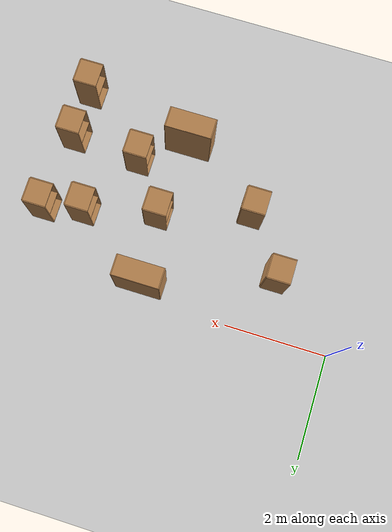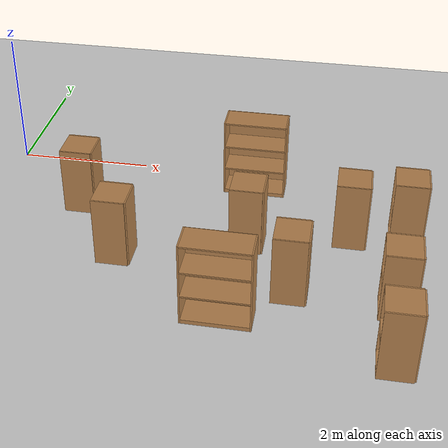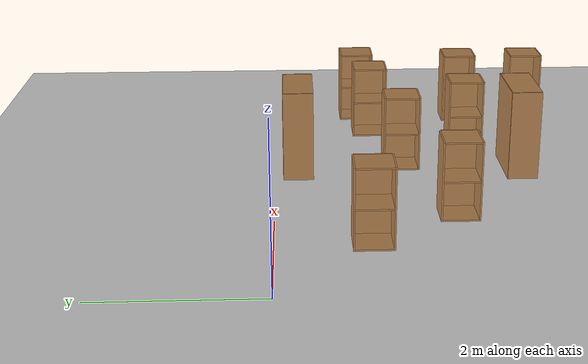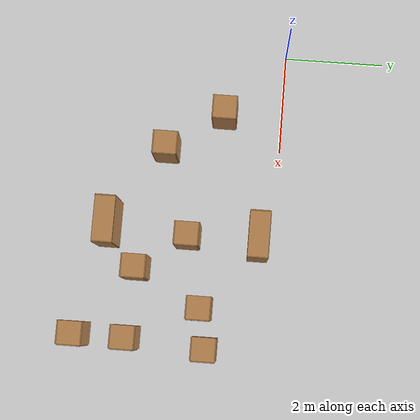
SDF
<sdf version="1.6">
 <world name="default">
  <model name="ground_plane">
   <static>1</static>
   <link name="link">
    <collision name="collision">
     <geometry><plane><normal>0 0 1</normal><size>100 100</size></plane></geometry>
     <surface><friction><ode><mu>100</mu><mu2>50</mu2></ode></friction></surface>
    </collision>
    <visual name="visual">
     <cast_shadows>0</cast_shadows>
     <geometry><plane><normal>0 0 1</normal><size>100 100</size></plane></geometry>
     <material>
      <script><uri>file://media/materials/scripts/gazebo.material</uri><name>Gazebo/Grey</name></script>
     </material>
    </visual>
   </link>
  </model>
  <model name="cabinet_47">
   <static>1</static>
   <link name="cabinet_bottom_plate">
    <inertial>
     <pose>0 0 -1 0 -0 0</pose>
     <inertia><ixx>2.05</ixx><ixy>0</ixy><ixz>0</ixz><iyy>2.05</iyy><iyz>0</iyz><izz>2.05</izz></inertia>
     <mass>25</mass>
    </inertial>
    <collision name="cabinet_bottom_plate_geom">
     <pose>0 0 0.01 0 -0 0</pose>
     <geometry><box><size>0.45 0.45 0.02</size></box></geometry>
    </collision>
    <visual name="cabinet_bottom_plate_geom_visual">
     <pose>0 0 0.01 0 -0 0</pose>
     <geometry><box><size>0.45 0.45 0.02</size></box></geometry>
     <material>
      <script><uri>file://media/materials/scripts/gazebo.material</uri><name>Gazebo/Wood</name></script>
     </material>
    </visual>
    <collision name="cabinet_bottom_plate_geom_cabinet_back_plate">
     <pose>0.235 0 0.51 0 -0 0</pose>
     <geometry><box><size>0.02 0.45 1.02</size></box></geometry>
    </collision>
    <visual name="cabinet_bottom_plate_geom_cabinet_back_plate_visual">
     <pose>0.235 0 0.51 0 -0 0</pose>
     <geometry><box><size>0.02 0.45 1.02</size></box></geometry>
     <material>
      <script><uri>file://media/materials/scripts/gazebo.material</uri><name>Gazebo/Wood</name></script>
     </material>
    </visual>
    <collision name="cabinet_bottom_plate_geom_cabinet_left_plate">
     <pose>0 0.235 0.51 0 -0 0</pose>
     <geometry><box><size>0.45 0.02 1.02</size></box></geometry>
    </collision>
    <visual name="cabinet_bottom_plate_geom_cabinet_left_plate_visual">
     <pose>0 0.235 0.51 0 -0 0</pose>
     <geometry><box><size>0.45 0.02 1.02</size></box></geometry>
     <material>
      <script><uri>file://media/materials/scripts/gazebo.material</uri><name>Gazebo/Wood</name></script>
     </material>
    </visual>
    <collision name="cabinet_bottom_plate_geom_cabinet_middle_plate">
     <pose>0 0 0.51 0 -0 0</pose>
     <geometry><box><size>0.45 0.45 0.02</size></box></geometry>
    </collision>
    <visual name="cabinet_bottom_plate_geom_cabinet_middle_plate_visual">
     <pose>0 0 0.51 0 -0 0</pose>
     <geometry><box><size>0.45 0.45 0.02</size></box></geometry>
     <material>
      <script><uri>file://media/materials/scripts/gazebo.material</uri><name>Gazebo/Wood</name></script>
     </material>
    </visual>
    <collision name="cabinet_bottom_plate_geom_cabinet_right_plate">
     <pose>0 -0.235 0.51 0 -0 0</pose>
     <geometry><box><size>0.45 0.02 1.02</size></box></geometry>
    </collision>
    <visual name="cabinet_bottom_plate_geom_cabinet_right_plate_visual">
     <pose>0 -0.235 0.51 0 -0 0</pose>
     <geometry><box><size>0.45 0.02 1.02</size></box></geometry>
     <material>
      <script><uri>file://media/materials/scripts/gazebo.material</uri><name>Gazebo/Wood</name></script>
     </material>
    </visual>
    <collision name="cabinet_bottom_plate_geom_cabinet_top_plate">
     <pose>0 0 1.01 0 -0 0</pose>
     <geometry><box><size>0.45 0.45 0.02</size></box></geometry>
    </collision>
    <visual name="cabinet_bottom_plate_geom_cabinet_top_plate_visual">
     <pose>0 0 1.01 0 -0 0</pose>
     <geometry><box><size>0.45 0.45 0.02</size></box></geometry>
     <material>
      <script><uri>file://media/materials/scripts/gazebo.material</uri><name>Gazebo/Wood</name></script>
     </material>
    </visual>
   </link>
   <pose>1.33405 -1.15531 0 0 -0 0</pose>
  </model>
  <model name="cabinet_48">
   <static>1</static>
   <link name="cabinet_bottom_plate">
    <inertial>
     <pose>0 0 -1 0 -0 0</pose>
     <inertia><ixx>2.05</ixx><ixy>0</ixy><ixz>0</ixz><iyy>2.05</iyy><iyz>0</iyz><izz>2.05</izz></inertia>
     <mass>25</mass>
    </inertial>
    <collision name="cabinet_bottom_plate_geom">
     <pose>0 0 0.01 0 -0 0</pose>
     <geometry><box><size>0.45 0.45 0.02</size></box></geometry>
    </collision>
    <visual name="cabinet_bottom_plate_geom_visual">
     <pose>0 0 0.01 0 -0 0</pose>
     <geometry><box><size>0.45 0.45 0.02</size></box></geometry>
     <material>
      <script><uri>file://media/materials/scripts/gazebo.material</uri><name>Gazebo/Wood</name></script>
     </material>
    </visual>
    <collision name="cabinet_bottom_plate_geom_cabinet_back_plate">
     <pose>0.235 0 0.51 0 -0 0</pose>
     <geometry><box><size>0.02 0.45 1.02</size></box></geometry>
    </collision>
    <visual name="cabinet_bottom_plate_geom_cabinet_back_plate_visual">
     <pose>0.235 0 0.51 0 -0 0</pose>
     <geometry><box><size>0.02 0.45 1.02</size></box></geometry>
     <material>
      <script><uri>file://media/materials/scripts/gazebo.material</uri><name>Gazebo/Wood</name></script>
     </material>
    </visual>
    <collision name="cabinet_bottom_plate_geom_cabinet_left_plate">
     <pose>0 0.235 0.51 0 -0 0</pose>
     <geometry><box><size>0.45 0.02 1.02</size></box></geometry>
    </collision>
    <visual name="cabinet_bottom_plate_geom_cabinet_left_plate_visual">
     <pose>0 0.235 0.51 0 -0 0</pose>
     <geometry><box><size>0.45 0.02 1.02</size></box></geometry>
     <material>
      <script><uri>file://media/materials/scripts/gazebo.material</uri><name>Gazebo/Wood</name></script>
     </material>
    </visual>
    <collision name="cabinet_bottom_plate_geom_cabinet_middle_plate">
     <pose>0 0 0.51 0 -0 0</pose>
     <geometry><box><size>0.45 0.45 0.02</size></box></geometry>
    </collision>
    <visual name="cabinet_bottom_plate_geom_cabinet_middle_plate_visual">
     <pose>0 0 0.51 0 -0 0</pose>
     <geometry><box><size>0.45 0.45 0.02</size></box></geometry>
     <material>
      <script><uri>file://media/materials/scripts/gazebo.material</uri><name>Gazebo/Wood</name></script>
     </material>
    </visual>
    <collision name="cabinet_bottom_plate_geom_cabinet_right_plate">
     <pose>0 -0.235 0.51 0 -0 0</pose>
     <geometry><box><size>0.45 0.02 1.02</size></box></geometry>
    </collision>
    <visual name="cabinet_bottom_plate_geom_cabinet_right_plate_visual">
     <pose>0 -0.235 0.51 0 -0 0</pose>
     <geometry><box><size>0.45 0.02 1.02</size></box></geometry>
     <material>
      <script><uri>file://media/materials/scripts/gazebo.material</uri><name>Gazebo/Wood</name></script>
     </material>
    </visual>
    <collision name="cabinet_bottom_plate_geom_cabinet_top_plate">
     <pose>0 0 1.01 0 -0 0</pose>
     <geometry><box><size>0.45 0.45 0.02</size></box></geometry>
    </collision>
    <visual name="cabinet_bottom_plate_geom_cabinet_top_plate_visual">
     <pose>0 0 1.01 0 -0 0</pose>
     <geometry><box><size>0.45 0.45 0.02</size></box></geometry>
     <material>
      <script><uri>file://media/materials/scripts/gazebo.material</uri><name>Gazebo/Wood</name></script>
     </material>
    </visual>
   </link>
   <pose>2.12091 -2.26683 0 0 -0 0</pose>
  </model>
  <model name="bookshelf_36">
   <static>1</static>
   <link name="link">
    <inertial><mass>1</mass></inertial>
    <collision name="back">
     <pose>0 0.005 0.6 0 -0 0</pose>
     <geometry><box><size>0.9 0.01 1.2</size></box></geometry>
    </collision>
    <visual name="visual1">
     <pose>0 0.005 0.6 0 -0 0</pose>
     <geometry><box><size>0.9 0.01 1.2</size></box></geometry>
     <material>
      <script><uri>file://media/materials/scripts/gazebo.material</uri><name>Gazebo/Wood</name></script>
     </material>
    </visual>
    <collision name="left_side">
     <pose>0.45 -0.195 0.6 0 -0 0</pose>
     <geometry><box><size>0.02 0.4 1.2</size></box></geometry>
    </collision>
    <visual name="visual2">
     <pose>0.45 -0.195 0.6 0 -0 0</pose>
     <geometry><box><size>0.02 0.4 1.2</size></box></geometry>
     <material>
      <script><uri>file://media/materials/scripts/gazebo.material</uri><name>Gazebo/Wood</name></script>
     </material>
    </visual>
    <collision name="right_side">
     <pose>-0.45 -0.195 0.6 0 -0 0</pose>
     <geometry><box><size>0.02 0.4 1.2</size></box></geometry>
    </collision>
    <visual name="visual3">
     <pose>-0.45 -0.195 0.6 0 -0 0</pose>
     <geometry><box><size>0.02 0.4 1.2</size></box></geometry>
     <material>
      <script><uri>file://media/materials/scripts/gazebo.material</uri><name>Gazebo/Wood</name></script>
     </material>
    </visual>
    <collision name="bottom">
     <pose>0 -0.195 0.03 0 -0 0</pose>
     <geometry><box><size>0.88 0.4 0.06</size></box></geometry>
    </collision>
    <visual name="visual4">
     <pose>0 -0.195 0.03 0 -0 0</pose>
     <geometry><box><size>0.88 0.4 0.06</size></box></geometry>
     <material>
      <script><uri>file://media/materials/scripts/gazebo.material</uri><name>Gazebo/Wood</name></script>
     </material>
    </visual>
    <collision name="top">
     <pose>0 -0.195 1.19 0 -0 0</pose>
     <geometry><box><size>0.88 0.4 0.02</size></box></geometry>
    </collision>
    <visual name="visual5">
     <pose>0 -0.195 1.19 0 -0 0</pose>
     <geometry><box><size>0.88 0.4 0.02</size></box></geometry>
     <material>
      <script><uri>file://media/materials/scripts/gazebo.material</uri><name>Gazebo/Wood</name></script>
     </material>
    </visual>
    <collision name="low_shelf">
     <pose>0 -0.195 0.43 0 -0 0</pose>
     <geometry><box><size>0.88 0.4 0.02</size></box></geometry>
    </collision>
    <visual name="visual6">
     <pose>0 -0.195 0.43 0 -0 0</pose>
     <geometry><box><size>0.88 0.4 0.02</size></box></geometry>
     <material>
      <script><uri>file://media/materials/scripts/gazebo.material</uri><name>Gazebo/Wood</name></script>
     </material>
    </visual>
    <collision name="high_shelf">
     <pose>0 -0.195 0.8 0 -0 0</pose>
     <geometry><box><size>0.88 0.4 0.02</size></box></geometry>
    </collision>
    <visual name="visual7">
     <pose>0 -0.195 0.8 0 -0 0</pose>
     <geometry><box><size>0.88 0.4 0.02</size></box></geometry>
     <material>
      <script><uri>file://media/materials/scripts/gazebo.material</uri><name>Gazebo/Wood</name></script>
     </material>
    </visual>
   </link>
   <pose>3.71688 -3.09977 0 0 -0 0</pose>
  </model>
  <model name="cabinet_49">
   <static>1</static>
   <link name="cabinet_bottom_plate">
    <inertial>
     <pose>0 0 -1 0 -0 0</pose>
     <inertia><ixx>2.05</ixx><ixy>0</ixy><ixz>0</ixz><iyy>2.05</iyy><iyz>0</iyz><izz>2.05</izz></inertia>
     <mass>25</mass>
    </inertial>
    <collision name="cabinet_bottom_plate_geom">
     <pose>0 0 0.01 0 -0 0</pose>
     <geometry><box><size>0.45 0.45 0.02</size></box></geometry>
    </collision>
    <visual name="cabinet_bottom_plate_geom_visual">
     <pose>0 0 0.01 0 -0 0</pose>
     <geometry><box><size>0.45 0.45 0.02</size></box></geometry>
     <material>
      <script><uri>file://media/materials/scripts/gazebo.material</uri><name>Gazebo/Wood</name></script>
     </material>
    </visual>
    <collision name="cabinet_bottom_plate_geom_cabinet_back_plate">
     <pose>0.235 0 0.51 0 -0 0</pose>
     <geometry><box><size>0.02 0.45 1.02</size></box></geometry>
    </collision>
    <visual name="cabinet_bottom_plate_geom_cabinet_back_plate_visual">
     <pose>0.235 0 0.51 0 -0 0</pose>
     <geometry><box><size>0.02 0.45 1.02</size></box></geometry>
     <material>
      <script><uri>file://media/materials/scripts/gazebo.material</uri><name>Gazebo/Wood</name></script>
     </material>
    </visual>
    <collision name="cabinet_bottom_plate_geom_cabinet_left_plate">
     <pose>0 0.235 0.51 0 -0 0</pose>
     <geometry><box><size>0.45 0.02 1.02</size></box></geometry>
    </collision>
    <visual name="cabinet_bottom_plate_geom_cabinet_left_plate_visual">
     <pose>0 0.235 0.51 0 -0 0</pose>
     <geometry><box><size>0.45 0.02 1.02</size></box></geometry>
     <material>
      <script><uri>file://media/materials/scripts/gazebo.material</uri><name>Gazebo/Wood</name></script>
     </material>
    </visual>
    <collision name="cabinet_bottom_plate_geom_cabinet_middle_plate">
     <pose>0 0 0.51 0 -0 0</pose>
     <geometry><box><size>0.45 0.45 0.02</size></box></geometry>
    </collision>
    <visual name="cabinet_bottom_plate_geom_cabinet_middle_plate_visual">
     <pose>0 0 0.51 0 -0 0</pose>
     <geometry><box><size>0.45 0.45 0.02</size></box></geometry>
     <material>
      <script><uri>file://media/materials/scripts/gazebo.material</uri><name>Gazebo/Wood</name></script>
     </material>
    </visual>
    <collision name="cabinet_bottom_plate_geom_cabinet_right_plate">
     <pose>0 -0.235 0.51 0 -0 0</pose>
     <geometry><box><size>0.45 0.02 1.02</size></box></geometry>
    </collision>
    <visual name="cabinet_bottom_plate_geom_cabinet_right_plate_visual">
     <pose>0 -0.235 0.51 0 -0 0</pose>
     <geometry><box><size>0.45 0.02 1.02</size></box></geometry>
     <material>
      <script><uri>file://media/materials/scripts/gazebo.material</uri><name>Gazebo/Wood</name></script>
     </material>
    </visual>
    <collision name="cabinet_bottom_plate_geom_cabinet_top_plate">
     <pose>0 0 1.01 0 -0 0</pose>
     <geometry><box><size>0.45 0.45 0.02</size></box></geometry>
    </collision>
    <visual name="cabinet_bottom_plate_geom_cabinet_top_plate_visual">
     <pose>0 0 1.01 0 -0 0</pose>
     <geometry><box><size>0.45 0.45 0.02</size></box></geometry>
     <material>
      <script><uri>file://media/materials/scripts/gazebo.material</uri><name>Gazebo/Wood</name></script>
     </material>
    </visual>
   </link>
   <pose>3.86479 -1.70745 0 0 -0 0</pose>
  </model>
  <model name="bookshelf_37">
   <static>1</static>
   <link name="link">
    <inertial><mass>1</mass></inertial>
    <collision name="back">
     <pose>0 0.005 0.6 0 -0 0</pose>
     <geometry><box><size>0.9 0.01 1.2</size></box></geometry>
    </collision>
    <visual name="visual1">
     <pose>0 0.005 0.6 0 -0 0</pose>
     <geometry><box><size>0.9 0.01 1.2</size></box></geometry>
     <material>
      <script><uri>file://media/materials/scripts/gazebo.material</uri><name>Gazebo/Wood</name></script>
     </material>
    </visual>
    <collision name="left_side">
     <pose>0.45 -0.195 0.6 0 -0 0</pose>
     <geometry><box><size>0.02 0.4 1.2</size></box></geometry>
    </collision>
    <visual name="visual2">
     <pose>0.45 -0.195 0.6 0 -0 0</pose>
     <geometry><box><size>0.02 0.4 1.2</size></box></geometry>
     <material>
      <script><uri>file://media/materials/scripts/gazebo.material</uri><name>Gazebo/Wood</name></script>
     </material>
    </visual>
    <collision name="right_side">
     <pose>-0.45 -0.195 0.6 0 -0 0</pose>
     <geometry><box><size>0.02 0.4 1.2</size></box></geometry>
    </collision>
    <visual name="visual3">
     <pose>-0.45 -0.195 0.6 0 -0 0</pose>
     <geometry><box><size>0.02 0.4 1.2</size></box></geometry>
     <material>
      <script><uri>file://media/materials/scripts/gazebo.material</uri><name>Gazebo/Wood</name></script>
     </material>
    </visual>
    <collision name="bottom">
     <pose>0 -0.195 0.03 0 -0 0</pose>
     <geometry><box><size>0.88 0.4 0.06</size></box></geometry>
    </collision>
    <visual name="visual4">
     <pose>0 -0.195 0.03 0 -0 0</pose>
     <geometry><box><size>0.88 0.4 0.06</size></box></geometry>
     <material>
      <script><uri>file://media/materials/scripts/gazebo.material</uri><name>Gazebo/Wood</name></script>
     </material>
    </visual>
    <collision name="top">
     <pose>0 -0.195 1.19 0 -0 0</pose>
     <geometry><box><size>0.88 0.4 0.02</size></box></geometry>
    </collision>
    <visual name="visual5">
     <pose>0 -0.195 1.19 0 -0 0</pose>
     <geometry><box><size>0.88 0.4 0.02</size></box></geometry>
     <material>
      <script><uri>file://media/materials/scripts/gazebo.material</uri><name>Gazebo/Wood</name></script>
     </material>
    </visual>
    <collision name="low_shelf">
     <pose>0 -0.195 0.43 0 -0 0</pose>
     <geometry><box><size>0.88 0.4 0.02</size></box></geometry>
    </collision>
    <visual name="visual6">
     <pose>0 -0.195 0.43 0 -0 0</pose>
     <geometry><box><size>0.88 0.4 0.02</size></box></geometry>
     <material>
      <script><uri>file://media/materials/scripts/gazebo.material</uri><name>Gazebo/Wood</name></script>
     </material>
    </visual>
    <collision name="high_shelf">
     <pose>0 -0.195 0.8 0 -0 0</pose>
     <geometry><box><size>0.88 0.4 0.02</size></box></geometry>
    </collision>
    <visual name="visual7">
     <pose>0 -0.195 0.8 0 -0 0</pose>
     <geometry><box><size>0.88 0.4 0.02</size></box></geometry>
     <material>
      <script><uri>file://media/materials/scripts/gazebo.material</uri><name>Gazebo/Wood</name></script>
     </material>
    </visual>
   </link>
   <pose>3.79589 -0.11323 0 0 -0 0</pose>
  </model>
  <model name="cabinet_55">
   <static>1</static>
   <link name="cabinet_bottom_plate">
    <inertial>
     <pose>0 0 -1 0 -0 0</pose>
     <inertia><ixx>2.05</ixx><ixy>0</ixy><ixz>0</ixz><iyy>2.05</iyy><iyz>0</iyz><izz>2.05</izz></inertia>
     <mass>25</mass>
    </inertial>
    <collision name="cabinet_bottom_plate_geom">
     <pose>0 0 0.01 0 -0 0</pose>
     <geometry><box><size>0.45 0.45 0.02</size></box></geometry>
    </collision>
    <visual name="cabinet_bottom_plate_geom_visual">
     <pose>0 0 0.01 0 -0 0</pose>
     <geometry><box><size>0.45 0.45 0.02</size></box></geometry>
     <material>
      <script><uri>file://media/materials/scripts/gazebo.material</uri><name>Gazebo/Wood</name></script>
     </material>
    </visual>
    <collision name="cabinet_bottom_plate_geom_cabinet_back_plate">
     <pose>0.235 0 0.51 0 -0 0</pose>
     <geometry><box><size>0.02 0.45 1.02</size></box></geometry>
    </collision>
    <visual name="cabinet_bottom_plate_geom_cabinet_back_plate_visual">
     <pose>0.235 0 0.51 0 -0 0</pose>
     <geometry><box><size>0.02 0.45 1.02</size></box></geometry>
     <material>
      <script><uri>file://media/materials/scripts/gazebo.material</uri><name>Gazebo/Wood</name></script>
     </material>
    </visual>
    <collision name="cabinet_bottom_plate_geom_cabinet_left_plate">
     <pose>0 0.235 0.51 0 -0 0</pose>
     <geometry><box><size>0.45 0.02 1.02</size></box></geometry>
    </collision>
    <visual name="cabinet_bottom_plate_geom_cabinet_left_plate_visual">
     <pose>0 0.235 0.51 0 -0 0</pose>
     <geometry><box><size>0.45 0.02 1.02</size></box></geometry>
     <material>
      <script><uri>file://media/materials/scripts/gazebo.material</uri><name>Gazebo/Wood</name></script>
     </material>
    </visual>
    <collision name="cabinet_bottom_plate_geom_cabinet_middle_plate">
     <pose>0 0 0.51 0 -0 0</pose>
     <geometry><box><size>0.45 0.45 0.02</size></box></geometry>
    </collision>
    <visual name="cabinet_bottom_plate_geom_cabinet_middle_plate_visual">
     <pose>0 0 0.51 0 -0 0</pose>
     <geometry><box><size>0.45 0.45 0.02</size></box></geometry>
     <material>
      <script><uri>file://media/materials/scripts/gazebo.material</uri><name>Gazebo/Wood</name></script>
     </material>
    </visual>
    <collision name="cabinet_bottom_plate_geom_cabinet_right_plate">
     <pose>0 -0.235 0.51 0 -0 0</pose>
     <geometry><box><size>0.45 0.02 1.02</size></box></geometry>
    </collision>
    <visual name="cabinet_bottom_plate_geom_cabinet_right_plate_visual">
     <pose>0 -0.235 0.51 0 -0 0</pose>
     <geometry><box><size>0.45 0.02 1.02</size></box></geometry>
     <material>
      <script><uri>file://media/materials/scripts/gazebo.material</uri><name>Gazebo/Wood</name></script>
     </material>
    </visual>
    <collision name="cabinet_bottom_plate_geom_cabinet_top_plate">
     <pose>0 0 1.01 0 -0 0</pose>
     <geometry><box><size>0.45 0.45 0.02</size></box></geometry>
    </collision>
    <visual name="cabinet_bottom_plate_geom_cabinet_top_plate_visual">
     <pose>0 0 1.01 0 -0 0</pose>
     <geometry><box><size>0.45 0.45 0.02</size></box></geometry>
     <material>
      <script><uri>file://media/materials/scripts/gazebo.material</uri><name>Gazebo/Wood</name></script>
     </material>
    </visual>
   </link>
   <pose>4.55737 -2.67599 0 0 -0 0</pose>
  </model>
  <model name="cabinet_56">
   <static>1</static>
   <link name="cabinet_bottom_plate">
    <inertial>
     <pose>0 0 -1 0 -0 0</pose>
     <inertia><ixx>2.05</ixx><ixy>0</ixy><ixz>0</ixz><iyy>2.05</iyy><iyz>0</iyz><izz>2.05</izz></inertia>
     <mass>25</mass>
    </inertial>
    <collision name="cabinet_bottom_plate_geom">
     <pose>0 0 0.01 0 -0 0</pose>
     <geometry><box><size>0.45 0.45 0.02</size></box></geometry>
    </collision>
    <visual name="cabinet_bottom_plate_geom_visual">
     <pose>0 0 0.01 0 -0 0</pose>
     <geometry><box><size>0.45 0.45 0.02</size></box></geometry>
     <material>
      <script><uri>file://media/materials/scripts/gazebo.material</uri><name>Gazebo/Wood</name></script>
     </material>
    </visual>
    <collision name="cabinet_bottom_plate_geom_cabinet_back_plate">
     <pose>0.235 0 0.51 0 -0 0</pose>
     <geometry><box><size>0.02 0.45 1.02</size></box></geometry>
    </collision>
    <visual name="cabinet_bottom_plate_geom_cabinet_back_plate_visual">
     <pose>0.235 0 0.51 0 -0 0</pose>
     <geometry><box><size>0.02 0.45 1.02</size></box></geometry>
     <material>
      <script><uri>file://media/materials/scripts/gazebo.material</uri><name>Gazebo/Wood</name></script>
     </material>
    </visual>
    <collision name="cabinet_bottom_plate_geom_cabinet_left_plate">
     <pose>0 0.235 0.51 0 -0 0</pose>
     <geometry><box><size>0.45 0.02 1.02</size></box></geometry>
    </collision>
    <visual name="cabinet_bottom_plate_geom_cabinet_left_plate_visual">
     <pose>0 0.235 0.51 0 -0 0</pose>
     <geometry><box><size>0.45 0.02 1.02</size></box></geometry>
     <material>
      <script><uri>file://media/materials/scripts/gazebo.material</uri><name>Gazebo/Wood</name></script>
     </material>
    </visual>
    <collision name="cabinet_bottom_plate_geom_cabinet_middle_plate">
     <pose>0 0 0.51 0 -0 0</pose>
     <geometry><box><size>0.45 0.45 0.02</size></box></geometry>
    </collision>
    <visual name="cabinet_bottom_plate_geom_cabinet_middle_plate_visual">
     <pose>0 0 0.51 0 -0 0</pose>
     <geometry><box><size>0.45 0.45 0.02</size></box></geometry>
     <material>
      <script><uri>file://media/materials/scripts/gazebo.material</uri><name>Gazebo/Wood</name></script>
     </material>
    </visual>
    <collision name="cabinet_bottom_plate_geom_cabinet_right_plate">
     <pose>0 -0.235 0.51 0 -0 0</pose>
     <geometry><box><size>0.45 0.02 1.02</size></box></geometry>
    </collision>
    <visual name="cabinet_bottom_plate_geom_cabinet_right_plate_visual">
     <pose>0 -0.235 0.51 0 -0 0</pose>
     <geometry><box><size>0.45 0.02 1.02</size></box></geometry>
     <material>
      <script><uri>file://media/materials/scripts/gazebo.material</uri><name>Gazebo/Wood</name></script>
     </material>
    </visual>
    <collision name="cabinet_bottom_plate_geom_cabinet_top_plate">
     <pose>0 0 1.01 0 -0 0</pose>
     <geometry><box><size>0.45 0.45 0.02</size></box></geometry>
    </collision>
    <visual name="cabinet_bottom_plate_geom_cabinet_top_plate_visual">
     <pose>0 0 1.01 0 -0 0</pose>
     <geometry><box><size>0.45 0.45 0.02</size></box></geometry>
     <material>
      <script><uri>file://media/materials/scripts/gazebo.material</uri><name>Gazebo/Wood</name></script>
     </material>
    </visual>
   </link>
   <pose>5.27223 -1.36706 0 0 -0 0</pose>
  </model>
  <model name="cabinet_61">
   <static>1</static>
   <link name="cabinet_bottom_plate">
    <inertial>
     <pose>0 0 -1 0 -0 0</pose>
     <inertia><ixx>2.05</ixx><ixy>0</ixy><ixz>0</ixz><iyy>2.05</iyy><iyz>0</iyz><izz>2.05</izz></inertia>
     <mass>25</mass>
    </inertial>
    <collision name="cabinet_bottom_plate_geom">
     <pose>0 0 0.01 0 -0 0</pose>
     <geometry><box><size>0.45 0.45 0.02</size></box></geometry>
    </collision>
    <visual name="cabinet_bottom_plate_geom_visual">
     <pose>0 0 0.01 0 -0 0</pose>
     <geometry><box><size>0.45 0.45 0.02</size></box></geometry>
     <material>
      <script><uri>file://media/materials/scripts/gazebo.material</uri><name>Gazebo/Wood</name></script>
     </material>
    </visual>
    <collision name="cabinet_bottom_plate_geom_cabinet_back_plate">
     <pose>0.235 0 0.51 0 -0 0</pose>
     <geometry><box><size>0.02 0.45 1.02</size></box></geometry>
    </collision>
    <visual name="cabinet_bottom_plate_geom_cabinet_back_plate_visual">
     <pose>0.235 0 0.51 0 -0 0</pose>
     <geometry><box><size>0.02 0.45 1.02</size></box></geometry>
     <material>
      <script><uri>file://media/materials/scripts/gazebo.material</uri><name>Gazebo/Wood</name></script>
     </material>
    </visual>
    <collision name="cabinet_bottom_plate_geom_cabinet_left_plate">
     <pose>0 0.235 0.51 0 -0 0</pose>
     <geometry><box><size>0.45 0.02 1.02</size></box></geometry>
    </collision>
    <visual name="cabinet_bottom_plate_geom_cabinet_left_plate_visual">
     <pose>0 0.235 0.51 0 -0 0</pose>
     <geometry><box><size>0.45 0.02 1.02</size></box></geometry>
     <material>
      <script><uri>file://media/materials/scripts/gazebo.material</uri><name>Gazebo/Wood</name></script>
     </material>
    </visual>
    <collision name="cabinet_bottom_plate_geom_cabinet_middle_plate">
     <pose>0 0 0.51 0 -0 0</pose>
     <geometry><box><size>0.45 0.45 0.02</size></box></geometry>
    </collision>
    <visual name="cabinet_bottom_plate_geom_cabinet_middle_plate_visual">
     <pose>0 0 0.51 0 -0 0</pose>
     <geometry><box><size>0.45 0.45 0.02</size></box></geometry>
     <material>
      <script><uri>file://media/materials/scripts/gazebo.material</uri><name>Gazebo/Wood</name></script>
     </material>
    </visual>
    <collision name="cabinet_bottom_plate_geom_cabinet_right_plate">
     <pose>0 -0.235 0.51 0 -0 0</pose>
     <geometry><box><size>0.45 0.02 1.02</size></box></geometry>
    </collision>
    <visual name="cabinet_bottom_plate_geom_cabinet_right_plate_visual">
     <pose>0 -0.235 0.51 0 -0 0</pose>
     <geometry><box><size>0.45 0.02 1.02</size></box></geometry>
     <material>
      <script><uri>file://media/materials/scripts/gazebo.material</uri><name>Gazebo/Wood</name></script>
     </material>
    </visual>
    <collision name="cabinet_bottom_plate_geom_cabinet_top_plate">
     <pose>0 0 1.01 0 -0 0</pose>
     <geometry><box><size>0.45 0.45 0.02</size></box></geometry>
    </collision>
    <visual name="cabinet_bottom_plate_geom_cabinet_top_plate_visual">
     <pose>0 0 1.01 0 -0 0</pose>
     <geometry><box><size>0.45 0.45 0.02</size></box></geometry>
     <material>
      <script><uri>file://media/materials/scripts/gazebo.material</uri><name>Gazebo/Wood</name></script>
     </material>
    </visual>
   </link>
   <pose>5.91953 -3.77024 0 0 -0 0</pose>
  </model>
  <model name="cabinet_62">
   <static>1</static>
   <link name="cabinet_bottom_plate">
    <inertial>
     <pose>0 0 -1 0 -0 0</pose>
     <inertia><ixx>2.05</ixx><ixy>0</ixy><ixz>0</ixz><iyy>2.05</iyy><iyz>0</iyz><izz>2.05</izz></inertia>
     <mass>25</mass>
    </inertial>
    <collision name="cabinet_bottom_plate_geom">
     <pose>0 0 0.01 0 -0 0</pose>
     <geometry><box><size>0.45 0.45 0.02</size></box></geometry>
    </collision>
    <visual name="cabinet_bottom_plate_geom_visual">
     <pose>0 0 0.01 0 -0 0</pose>
     <geometry><box><size>0.45 0.45 0.02</size></box></geometry>
     <material>
      <script><uri>file://media/materials/scripts/gazebo.material</uri><name>Gazebo/Wood</name></script>
     </material>
    </visual>
    <collision name="cabinet_bottom_plate_geom_cabinet_back_plate">
     <pose>0.235 0 0.51 0 -0 0</pose>
     <geometry><box><size>0.02 0.45 1.02</size></box></geometry>
    </collision>
    <visual name="cabinet_bottom_plate_geom_cabinet_back_plate_visual">
     <pose>0.235 0 0.51 0 -0 0</pose>
     <geometry><box><size>0.02 0.45 1.02</size></box></geometry>
     <material>
      <script><uri>file://media/materials/scripts/gazebo.material</uri><name>Gazebo/Wood</name></script>
     </material>
    </visual>
    <collision name="cabinet_bottom_plate_geom_cabinet_left_plate">
     <pose>0 0.235 0.51 0 -0 0</pose>
     <geometry><box><size>0.45 0.02 1.02</size></box></geometry>
    </collision>
    <visual name="cabinet_bottom_plate_geom_cabinet_left_plate_visual">
     <pose>0 0.235 0.51 0 -0 0</pose>
     <geometry><box><size>0.45 0.02 1.02</size></box></geometry>
     <material>
      <script><uri>file://media/materials/scripts/gazebo.material</uri><name>Gazebo/Wood</name></script>
     </material>
    </visual>
    <collision name="cabinet_bottom_plate_geom_cabinet_middle_plate">
     <pose>0 0 0.51 0 -0 0</pose>
     <geometry><box><size>0.45 0.45 0.02</size></box></geometry>
    </collision>
    <visual name="cabinet_bottom_plate_geom_cabinet_middle_plate_visual">
     <pose>0 0 0.51 0 -0 0</pose>
     <geometry><box><size>0.45 0.45 0.02</size></box></geometry>
     <material>
      <script><uri>file://media/materials/scripts/gazebo.material</uri><name>Gazebo/Wood</name></script>
     </material>
    </visual>
    <collision name="cabinet_bottom_plate_geom_cabinet_right_plate">
     <pose>0 -0.235 0.51 0 -0 0</pose>
     <geometry><box><size>0.45 0.02 1.02</size></box></geometry>
    </collision>
    <visual name="cabinet_bottom_plate_geom_cabinet_right_plate_visual">
     <pose>0 -0.235 0.51 0 -0 0</pose>
     <geometry><box><size>0.45 0.02 1.02</size></box></geometry>
     <material>
      <script><uri>file://media/materials/scripts/gazebo.material</uri><name>Gazebo/Wood</name></script>
     </material>
    </visual>
    <collision name="cabinet_bottom_plate_geom_cabinet_top_plate">
     <pose>0 0 1.01 0 -0 0</pose>
     <geometry><box><size>0.45 0.45 0.02</size></box></geometry>
    </collision>
    <visual name="cabinet_bottom_plate_geom_cabinet_top_plate_visual">
     <pose>0 0 1.01 0 -0 0</pose>
     <geometry><box><size>0.45 0.45 0.02</size></box></geometry>
     <material>
      <script><uri>file://media/materials/scripts/gazebo.material</uri><name>Gazebo/Wood</name></script>
     </material>
    </visual>
   </link>
   <pose>5.92779 -2.7646 0 0 -0 0</pose>
  </model>
  <model name="cabinet_63">
   <static>1</static>
   <link name="cabinet_bottom_plate">
    <inertial>
     <pose>0 0 -1 0 -0 0</pose>
     <inertia><ixx>2.05</ixx><ixy>0</ixy><ixz>0</ixz><iyy>2.05</iyy><iyz>0</iyz><izz>2.05</izz></inertia>
     <mass>25</mass>
    </inertial>
    <collision name="cabinet_bottom_plate_geom">
     <pose>0 0 0.01 0 -0 0</pose>
     <geometry><box><size>0.45 0.45 0.02</size></box></geometry>
    </collision>
    <visual name="cabinet_bottom_plate_geom_visual">
     <pose>0 0 0.01 0 -0 0</pose>
     <geometry><box><size>0.45 0.45 0.02</size></box></geometry>
     <material>
      <script><uri>file://media/materials/scripts/gazebo.material</uri><name>Gazebo/Wood</name></script>
     </material>
    </visual>
    <collision name="cabinet_bottom_plate_geom_cabinet_back_plate">
     <pose>0.235 0 0.51 0 -0 0</pose>
     <geometry><box><size>0.02 0.45 1.02</size></box></geometry>
    </collision>
    <visual name="cabinet_bottom_plate_geom_cabinet_back_plate_visual">
     <pose>0.235 0 0.51 0 -0 0</pose>
     <geometry><box><size>0.02 0.45 1.02</size></box></geometry>
     <material>
      <script><uri>file://media/materials/scripts/gazebo.material</uri><name>Gazebo/Wood</name></script>
     </material>
    </visual>
    <collision name="cabinet_bottom_plate_geom_cabinet_left_plate">
     <pose>0 0.235 0.51 0 -0 0</pose>
     <geometry><box><size>0.45 0.02 1.02</size></box></geometry>
    </collision>
    <visual name="cabinet_bottom_plate_geom_cabinet_left_plate_visual">
     <pose>0 0.235 0.51 0 -0 0</pose>
     <geometry><box><size>0.45 0.02 1.02</size></box></geometry>
     <material>
      <script><uri>file://media/materials/scripts/gazebo.material</uri><name>Gazebo/Wood</name></script>
     </material>
    </visual>
    <collision name="cabinet_bottom_plate_geom_cabinet_middle_plate">
     <pose>0 0 0.51 0 -0 0</pose>
     <geometry><box><size>0.45 0.45 0.02</size></box></geometry>
    </collision>
    <visual name="cabinet_bottom_plate_geom_cabinet_middle_plate_visual">
     <pose>0 0 0.51 0 -0 0</pose>
     <geometry><box><size>0.45 0.45 0.02</size></box></geometry>
     <material>
      <script><uri>file://media/materials/scripts/gazebo.material</uri><name>Gazebo/Wood</name></script>
     </material>
    </visual>
    <collision name="cabinet_bottom_plate_geom_cabinet_right_plate">
     <pose>0 -0.235 0.51 0 -0 0</pose>
     <geometry><box><size>0.45 0.02 1.02</size></box></geometry>
    </collision>
    <visual name="cabinet_bottom_plate_geom_cabinet_right_plate_visual">
     <pose>0 -0.235 0.51 0 -0 0</pose>
     <geometry><box><size>0.45 0.02 1.02</size></box></geometry>
     <material>
      <script><uri>file://media/materials/scripts/gazebo.material</uri><name>Gazebo/Wood</name></script>
     </material>
    </visual>
    <collision name="cabinet_bottom_plate_geom_cabinet_top_plate">
     <pose>0 0 1.01 0 -0 0</pose>
     <geometry><box><size>0.45 0.45 0.02</size></box></geometry>
    </collision>
    <visual name="cabinet_bottom_plate_geom_cabinet_top_plate_visual">
     <pose>0 0 1.01 0 -0 0</pose>
     <geometry><box><size>0.45 0.45 0.02</size></box></geometry>
     <material>
      <script><uri>file://media/materials/scripts/gazebo.material</uri><name>Gazebo/Wood</name></script>
     </material>
    </visual>
   </link>
   <pose>6.04711 -1.21239 0 0 -0 0</pose>
  </model>
 </world>
</sdf>
